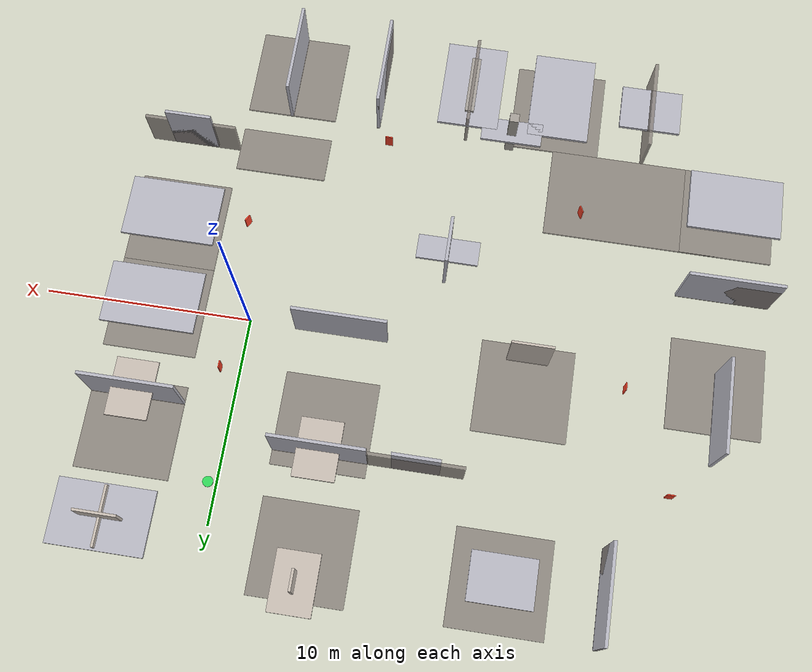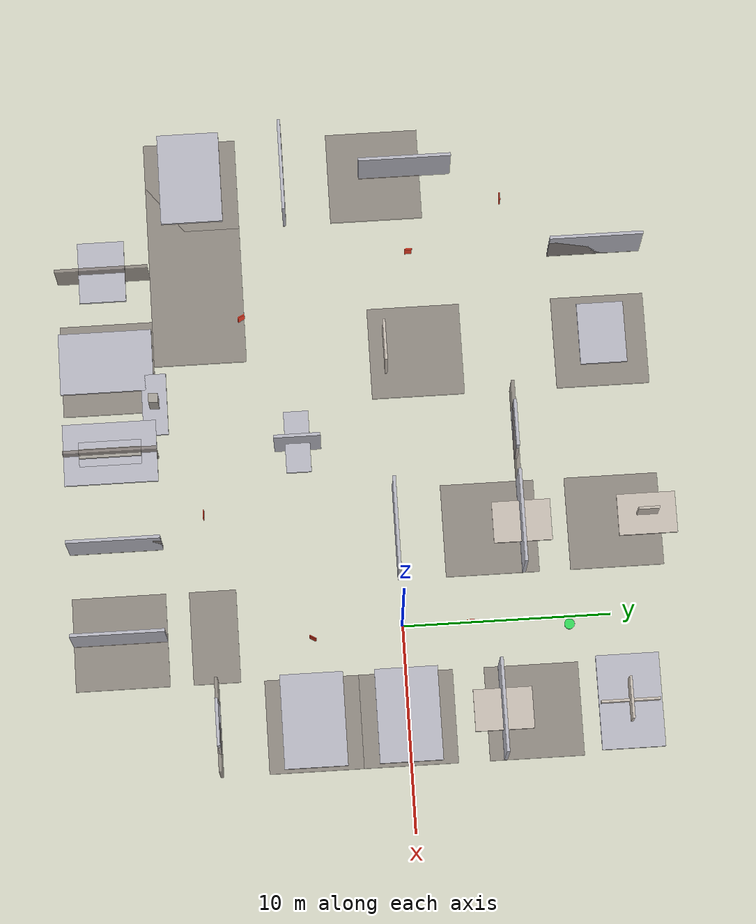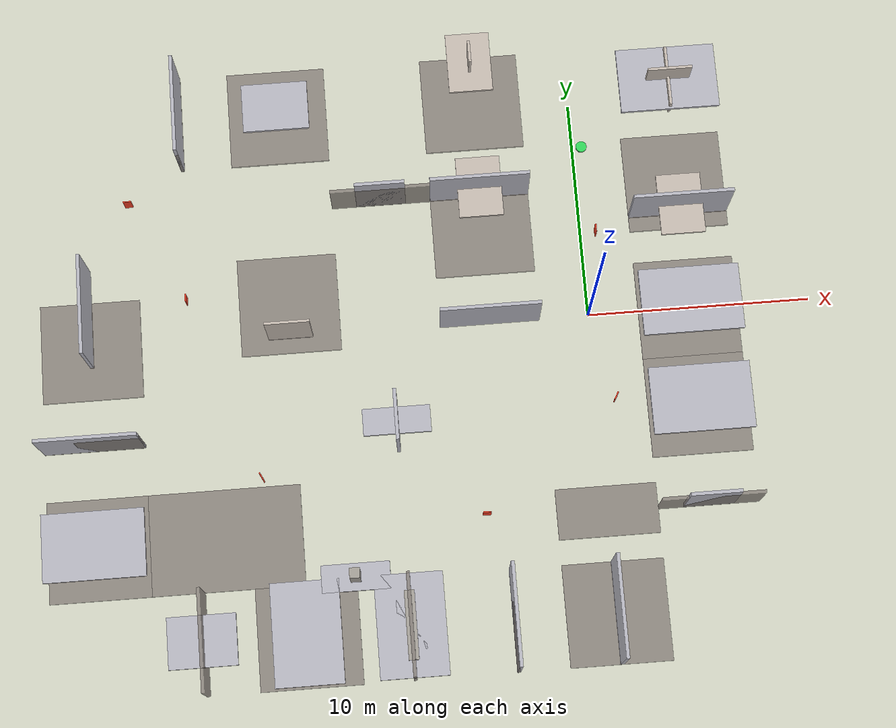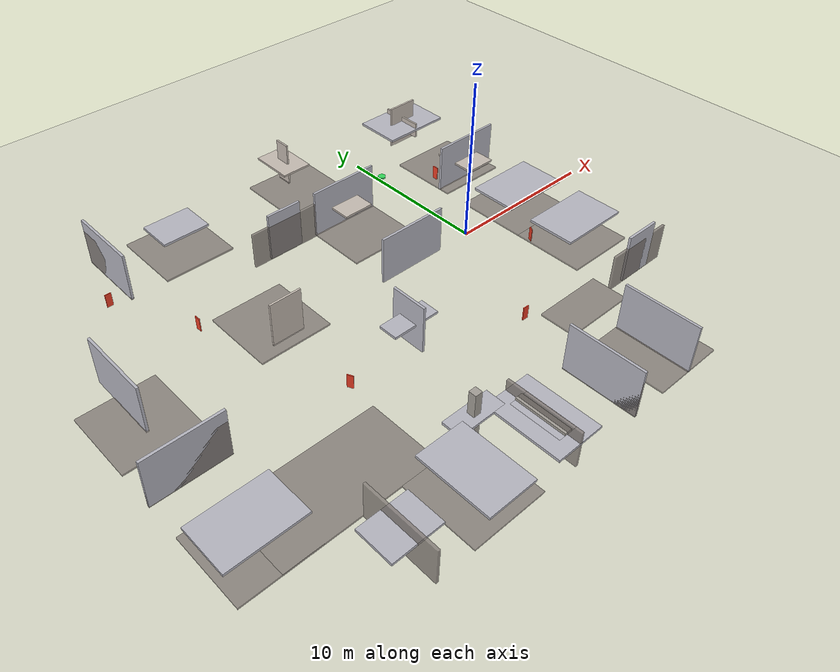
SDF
<sdf version="1.6">
 <world name="lab4_world">
  <include><uri>model://ground_plane</uri></include>
  <include><uri>model://sun</uri></include>
  <model name="lab4_0001_Door_Left_01">
   <static>true</static>
   <pose>4.5 10.5 1.4000018863149999 1.570796380007374 0.0 -0.0</pose>
   <link name="link">
    <collision name="collision"><geometry><box><size>0.12 1.0 2.8</size></box></geometry></collision>
    <visual name="visual">
     <geometry><box><size>0.12 1.0 2.8</size></box></geometry>
     <material><ambient>0.78 0.74 0.7 1.0</ambient><diffuse>0.78 0.74 0.7 1.0</diffuse></material>
    </visual>
   </link>
  </model>
  <model name="lab4_0011_Roof_01">
   <static>true</static>
   <pose>4.5 6.0 0.0 0.0 -0.0 0.0</pose>
   <link name="link">
    <collision name="collision"><geometry><box><size>4.5 4.5 0.15</size></box></geometry></collision>
    <visual name="visual">
     <geometry><box><size>4.5 4.5 0.15</size></box></geometry>
     <material><ambient>0.55 0.52 0.5 0.85</ambient><diffuse>0.55 0.52 0.5 0.85</diffuse></material>
    </visual>
   </link>
  </model>
  <model name="lab4_0012_Column_01_Top">
   <static>true</static>
   <pose>-9.0 -13.5 1.5 1.5707963800074007 0.0 3.141592327748509</pose>
   <link name="link">
    <collision name="collision"><geometry><box><size>0.45 0.45 3.0</size></box></geometry></collision>
    <visual name="visual">
     <geometry><box><size>0.45 0.45 3.0</size></box></geometry>
     <material><ambient>0.65 0.63 0.6 1.0</ambient><diffuse>0.65 0.63 0.6 1.0</diffuse></material>
    </visual>
   </link>
  </model>
  <model name="lab4_0013_Wall_Simple_01">
   <static>true</static>
   <pose>4.5 0.0 1.4999992290394 1.570796380007408 2.3040460015056276e-14 3.14159232774844</pose>
   <link name="link">
    <collision name="collision"><geometry><box><size>4.5 0.15 3.0</size></box></geometry></collision>
    <visual name="visual">
     <geometry><box><size>4.5 0.15 3.0</size></box></geometry>
     <material><ambient>0.72 0.72 0.76 1.0</ambient><diffuse>0.72 0.72 0.76 1.0</diffuse></material>
    </visual>
   </link>
  </model>
  <model name="lab4_0023_Collider_03">
   <static>true</static>
   <pose>-12.792 -2.388 1.5 0.0 0.0 -2.359975077883736</pose>
   <link name="link">
    <collision name="collision"><geometry><box><size>4.5 4.5 3.0</size></box></geometry></collision>
   </link>
  </model>
  <model name="lab4_0024_Collider_01">
   <static>true</static>
   <pose>-9.015 -4.557 1.5 0.0 0.0 1.2679824899917038</pose>
   <link name="link">
    <collision name="collision"><geometry><box><size>4.5 4.5 3.0</size></box></geometry></collision>
   </link>
  </model>
  <model name="lab4_0025_Wall_Arc_90_01">
   <static>true</static>
   <pose>-9.0 -4.5 1.5 0.0 -0.0 -1.5707963800073814</pose>
   <link name="link">
    <collision name="collision"><geometry><box><size>2.25 0.15 3.0</size></box></geometry></collision>
    <visual name="visual">
     <geometry><box><size>2.25 0.15 3.0</size></box></geometry>
     <material><ambient>0.72 0.72 0.76 1.0</ambient><diffuse>0.72 0.72 0.76 1.0</diffuse></material>
    </visual>
   </link>
  </model>
  <model name="lab4_0026_Collider_02">
   <static>true</static>
   <pose>-13.44 0.02999926 1.5 0.0 0.0 -2.8780472667767687</pose>
   <link name="link">
    <collision name="collision"><geometry><box><size>4.5 4.5 3.0</size></box></geometry></collision>
   </link>
  </model>
  <model name="lab4_0027_Collider_01">
   <static>true</static>
   <pose>-18.0 -13.5 1.5 0.0 0.0 1.314078273286227</pose>
   <link name="link">
    <collision name="collision"><geometry><box><size>4.5 4.5 3.0</size></box></geometry></collision>
   </link>
  </model>
  <model name="lab4_0028_Wall_Arc_90_02">
   <static>true</static>
   <pose>-18.0 -13.5 1.5000001788139 1.5707965267948765 0.0 -1.5707967267948564</pose>
   <link name="link">
    <collision name="collision"><geometry><box><size>2.25 0.15 3.0</size></box></geometry></collision>
    <visual name="visual">
     <geometry><box><size>2.25 0.15 3.0</size></box></geometry>
     <material><ambient>0.72 0.72 0.76 1.0</ambient><diffuse>0.72 0.72 0.76 1.0</diffuse></material>
    </visual>
   </link>
  </model>
  <model name="lab4_0030_Collider_03">
   <static>true</static>
   <pose>-21.975 -11.1 1.5 0.0 -0.0 -2.3798531143857002</pose>
   <link name="link">
    <collision name="collision"><geometry><box><size>4.5 4.5 3.0</size></box></geometry></collision>
   </link>
  </model>
  <model name="lab4_0050_Wall_Simple_01">
   <static>true</static>
   <pose>0.0 -13.5 1.5 -0.0 0.0 1.5707963800073814</pose>
   <link name="link">
    <collision name="collision"><geometry><box><size>4.5 0.15 3.0</size></box></geometry></collision>
    <visual name="visual">
     <geometry><box><size>4.5 0.15 3.0</size></box></geometry>
     <material><ambient>0.72 0.72 0.76 1.0</ambient><diffuse>0.72 0.72 0.76 1.0</diffuse></material>
    </visual>
   </link>
  </model>
  <model name="lab4_0052_Door_Arch_01">
   <static>true</static>
   <pose>-4.5 6.0 1.4 1.5707963800074007 0.0 3.141592327748509</pose>
   <link name="link">
    <collision name="collision"><geometry><box><size>2.0 0.12 2.8</size></box></geometry></collision>
    <visual name="visual">
     <geometry><box><size>2.0 0.12 2.8</size></box></geometry>
     <material><ambient>0.78 0.74 0.7 1.0</ambient><diffuse>0.78 0.74 0.7 1.0</diffuse></material>
    </visual>
   </link>
  </model>
  <model name="lab4_0053_Roof_01">
   <static>true</static>
   <pose>4.5 0.0 0.0 0.0 -0.0 0.0</pose>
   <link name="link">
    <collision name="collision"><geometry><box><size>4.5 4.5 0.15</size></box></geometry></collision>
    <visual name="visual">
     <geometry><box><size>4.5 4.5 0.15</size></box></geometry>
     <material><ambient>0.55 0.52 0.5 0.85</ambient><diffuse>0.55 0.52 0.5 0.85</diffuse></material>
    </visual>
   </link>
  </model>
  <model name="lab4_0054_Wall_Simple_01">
   <static>true</static>
   <pose>4.5 10.5 1.4999992290394 1.570796380007408 2.3040460015056276e-14 3.14159232774844</pose>
   <link name="link">
    <collision name="collision"><geometry><box><size>4.5 0.15 3.0</size></box></geometry></collision>
    <visual name="visual">
     <geometry><box><size>4.5 0.15 3.0</size></box></geometry>
     <material><ambient>0.72 0.72 0.76 1.0</ambient><diffuse>0.72 0.72 0.76 1.0</diffuse></material>
    </visual>
   </link>
  </model>
  <model name="lab4_0055_Door_Arch_01">
   <static>true</static>
   <pose>4.5 4.5 1.4 1.570796380007374 0.0 -0.0</pose>
   <link name="link">
    <collision name="collision"><geometry><box><size>2.0 0.12 2.8</size></box></geometry></collision>
    <visual name="visual">
     <geometry><box><size>2.0 0.12 2.8</size></box></geometry>
     <material><ambient>0.78 0.74 0.7 1.0</ambient><diffuse>0.78 0.74 0.7 1.0</diffuse></material>
    </visual>
   </link>
  </model>
  <model name="lab4_0056_Wall_Simple_01">
   <static>true</static>
   <pose>-4.5 0.0 1.5 0.0 -0.0 0.0</pose>
   <link name="link">
    <collision name="collision"><geometry><box><size>4.5 0.15 3.0</size></box></geometry></collision>
    <visual name="visual">
     <geometry><box><size>4.5 0.15 3.0</size></box></geometry>
     <material><ambient>0.72 0.72 0.76 1.0</ambient><diffuse>0.72 0.72 0.76 1.0</diffuse></material>
    </visual>
   </link>
  </model>
  <model name="lab4_0057_Roof_01">
   <static>true</static>
   <pose>-4.5 4.5 0.0 0.0 0.0 3.141592327748393</pose>
   <link name="link">
    <collision name="collision"><geometry><box><size>4.5 4.5 0.15</size></box></geometry></collision>
    <visual name="visual">
     <geometry><box><size>4.5 4.5 0.15</size></box></geometry>
     <material><ambient>0.55 0.52 0.5 0.85</ambient><diffuse>0.55 0.52 0.5 0.85</diffuse></material>
    </visual>
   </link>
  </model>
  <model name="lab4_0059_Roof_Angle_01">
   <static>true</static>
   <pose>-22.5 -9.0 0.0 0.0 0.0 3.141592327748393</pose>
   <link name="link">
    <collision name="collision"><geometry><box><size>4.5 4.5 0.15</size></box></geometry></collision>
    <visual name="visual">
     <geometry><box><size>4.5 4.5 0.15</size></box></geometry>
     <material><ambient>0.55 0.52 0.5 0.85</ambient><diffuse>0.55 0.52 0.5 0.85</diffuse></material>
    </visual>
   </link>
  </model>
  <model name="lab4_0060_Roof_Angle_Smal_01">
   <static>true</static>
   <pose>0.0 -9.0 0.0 -0.0 0.0 1.5707963800073814</pose>
   <link name="link">
    <collision name="collision"><geometry><box><size>2.25 4.5 0.15</size></box></geometry></collision>
    <visual name="visual">
     <geometry><box><size>2.25 4.5 0.15</size></box></geometry>
     <material><ambient>0.55 0.52 0.5 0.85</ambient><diffuse>0.55 0.52 0.5 0.85</diffuse></material>
    </visual>
   </link>
  </model>
  <model name="lab4_0061_Wall_Simple_01">
   <static>true</static>
   <pose>-4.5 -13.5 1.5 -0.0 0.0 1.5707963800073814</pose>
   <link name="link">
    <collision name="collision"><geometry><box><size>4.5 0.15 3.0</size></box></geometry></collision>
    <visual name="visual">
     <geometry><box><size>4.5 0.15 3.0</size></box></geometry>
     <material><ambient>0.72 0.72 0.76 1.0</ambient><diffuse>0.72 0.72 0.76 1.0</diffuse></material>
    </visual>
   </link>
  </model>
  <model name="lab4_0062_Door_Left_01">
   <static>true</static>
   <pose>-4.5 12.0 1.4 0.0 0.0 3.141592327748393</pose>
   <link name="link">
    <collision name="collision"><geometry><box><size>0.12 1.0 2.8</size></box></geometry></collision>
    <visual name="visual">
     <geometry><box><size>0.12 1.0 2.8</size></box></geometry>
     <material><ambient>0.78 0.74 0.7 1.0</ambient><diffuse>0.78 0.74 0.7 1.0</diffuse></material>
    </visual>
   </link>
  </model>
  <model name="lab4_0063_Wall_HalfArc_90_02">
   <static>true</static>
   <pose>-11.25 -11.25 1.4999997245652 1.5707963267949365 0.0 -1.5707967267949363</pose>
   <link name="link">
    <collision name="collision"><geometry><box><size>1.2 0.15 3.0</size></box></geometry></collision>
    <visual name="visual">
     <geometry><box><size>1.2 0.15 3.0</size></box></geometry>
     <material><ambient>0.72 0.72 0.76 1.0</ambient><diffuse>0.72 0.72 0.76 1.0</diffuse></material>
    </visual>
   </link>
  </model>
  <model name="lab4_0064_Collider_01">
   <static>true</static>
   <pose>-11.193 -11.265 1.5 0.0 0.0 1.8561225869267992</pose>
   <link name="link">
    <collision name="collision"><geometry><box><size>4.5 4.5 3.0</size></box></geometry></collision>
   </link>
  </model>
  <model name="lab4_0065_Collider_02">
   <static>true</static>
   <pose>-13.2855 -12.456 1.5 0.0 -0.0 -0.8272861256337589</pose>
   <link name="link">
    <collision name="collision"><geometry><box><size>4.5 4.5 3.0</size></box></geometry></collision>
   </link>
  </model>
  <model name="lab4_0066_Collider_03">
   <static>true</static>
   <pose>-13.539 -13.4805 1.5 0.0 -0.0 -0.2560395896883971</pose>
   <link name="link">
    <collision name="collision"><geometry><box><size>4.5 4.5 3.0</size></box></geometry></collision>
   </link>
  </model>
  <model name="lab4_0067_Roof_01">
   <static>true</static>
   <pose>-9.0 -13.5 0.0 1.5707965267948765 0.0 -1.5707967267948564</pose>
   <link name="link">
    <collision name="collision"><geometry><box><size>4.5 4.5 0.15</size></box></geometry></collision>
    <visual name="visual">
     <geometry><box><size>4.5 4.5 0.15</size></box></geometry>
     <material><ambient>0.55 0.52 0.5 0.85</ambient><diffuse>0.55 0.52 0.5 0.85</diffuse></material>
    </visual>
   </link>
  </model>
  <model name="lab4_0069_Roof_Angle_01">
   <static>true</static>
   <pose>-9.0 6.0 1.788139e-07 1.570796380007374 0.0 -0.0</pose>
   <link name="link">
    <collision name="collision"><geometry><box><size>4.5 4.5 0.15</size></box></geometry></collision>
    <visual name="visual">
     <geometry><box><size>4.5 4.5 0.15</size></box></geometry>
     <material><ambient>0.55 0.52 0.5 0.85</ambient><diffuse>0.55 0.52 0.5 0.85</diffuse></material>
    </visual>
   </link>
  </model>
  <model name="lab4_0070_Collider_01">
   <static>true</static>
   <pose>4.5 -9.0 1.5 0.0 0.0 2.884874576881996</pose>
   <link name="link">
    <collision name="collision"><geometry><box><size>4.5 4.5 3.0</size></box></geometry></collision>
   </link>
  </model>
  <model name="lab4_0071_Collider_02">
   <static>true</static>
   <pose>-0.06000137 -13.515 1.5 0.0 -0.0 -1.3432360122908897</pose>
   <link name="link">
    <collision name="collision"><geometry><box><size>4.5 4.5 3.0</size></box></geometry></collision>
   </link>
  </model>
  <model name="lab4_0072_Wall_Arc_90_02">
   <static>true</static>
   <pose>4.5 -9.0 1.5 0.0 -0.0 0.0</pose>
   <link name="link">
    <collision name="collision"><geometry><box><size>2.25 0.15 3.0</size></box></geometry></collision>
    <visual name="visual">
     <geometry><box><size>2.25 0.15 3.0</size></box></geometry>
     <material><ambient>0.72 0.72 0.76 1.0</ambient><diffuse>0.72 0.72 0.76 1.0</diffuse></material>
    </visual>
   </link>
  </model>
  <model name="lab4_0073_Collider_03">
   <static>true</static>
   <pose>2.099999 -12.975 1.5 0.0 -0.0 -0.8090566831456931</pose>
   <link name="link">
    <collision name="collision"><geometry><box><size>4.5 4.5 3.0</size></box></geometry></collision>
   </link>
  </model>
  <model name="lab4_0074_Wall_Simple_01">
   <static>true</static>
   <pose>-22.5 1.5 1.5 -0.0 0.0 1.5707963800073814</pose>
   <link name="link">
    <collision name="collision"><geometry><box><size>4.5 0.15 3.0</size></box></geometry></collision>
    <visual name="visual">
     <geometry><box><size>4.5 0.15 3.0</size></box></geometry>
     <material><ambient>0.72 0.72 0.76 1.0</ambient><diffuse>0.72 0.72 0.76 1.0</diffuse></material>
    </visual>
   </link>
  </model>
  <model name="lab4_0075_Roof_01">
   <static>true</static>
   <pose>-18.0 10.5 0.0 1.5707965267948765 0.0 1.5707967267948564</pose>
   <link name="link">
    <collision name="collision"><geometry><box><size>4.5 4.5 0.15</size></box></geometry></collision>
    <visual name="visual">
     <geometry><box><size>4.5 4.5 0.15</size></box></geometry>
     <material><ambient>0.55 0.52 0.5 0.85</ambient><diffuse>0.55 0.52 0.5 0.85</diffuse></material>
    </visual>
   </link>
  </model>
  <model name="lab4_0076_Wall_Simple_01">
   <static>true</static>
   <pose>4.5 4.5 1.5 0.0 0.0 3.141592327748393</pose>
   <link name="link">
    <collision name="collision"><geometry><box><size>4.5 0.15 3.0</size></box></geometry></collision>
    <visual name="visual">
     <geometry><box><size>4.5 0.15 3.0</size></box></geometry>
     <material><ambient>0.72 0.72 0.76 1.0</ambient><diffuse>0.72 0.72 0.76 1.0</diffuse></material>
    </visual>
   </link>
  </model>
  <model name="lab4_0077_Wall_Simple_01">
   <static>true</static>
   <pose>-22.5 -9.0 1.4999992290394 1.5707963800073814 0.0 -0.0</pose>
   <link name="link">
    <collision name="collision"><geometry><box><size>4.5 0.15 3.0</size></box></geometry></collision>
    <visual name="visual">
     <geometry><box><size>4.5 0.15 3.0</size></box></geometry>
     <material><ambient>0.72 0.72 0.76 1.0</ambient><diffuse>0.72 0.72 0.76 1.0</diffuse></material>
    </visual>
   </link>
  </model>
  <model name="lab4_0078_Door_Arch_01">
   <static>true</static>
   <pose>4.5 10.5 1.4 0.0 -0.0 0.0</pose>
   <link name="link">
    <collision name="collision"><geometry><box><size>2.0 0.12 2.8</size></box></geometry></collision>
    <visual name="visual">
     <geometry><box><size>2.0 0.12 2.8</size></box></geometry>
     <material><ambient>0.78 0.74 0.7 1.0</ambient><diffuse>0.78 0.74 0.7 1.0</diffuse></material>
    </visual>
   </link>
  </model>
  <model name="lab4_0079_Door_Arch_01">
   <static>true</static>
   <pose>-13.5 0.0 1.4 0.0 -0.0 0.0</pose>
   <link name="link">
    <collision name="collision"><geometry><box><size>2.0 0.12 2.8</size></box></geometry></collision>
    <visual name="visual">
     <geometry><box><size>2.0 0.12 2.8</size></box></geometry>
     <material><ambient>0.78 0.74 0.7 1.0</ambient><diffuse>0.78 0.74 0.7 1.0</diffuse></material>
    </visual>
   </link>
  </model>
  <model name="lab4_0080_Wall_Simple_01">
   <static>true</static>
   <pose>-4.5 6.0 1.5 0.0 -0.0 0.0</pose>
   <link name="link">
    <collision name="collision"><geometry><box><size>4.5 0.15 3.0</size></box></geometry></collision>
    <visual name="visual">
     <geometry><box><size>4.5 0.15 3.0</size></box></geometry>
     <material><ambient>0.72 0.72 0.76 1.0</ambient><diffuse>0.72 0.72 0.76 1.0</diffuse></material>
    </visual>
   </link>
  </model>
  <model name="lab4_0081_Roof_Angle_Large_01">
   <static>true</static>
   <pose>-18.0 -9.0 0.0 0.0 -0.0 0.0</pose>
   <link name="link">
    <collision name="collision"><geometry><box><size>9.0 4.5 0.15</size></box></geometry></collision>
    <visual name="visual">
     <geometry><box><size>9.0 4.5 0.15</size></box></geometry>
     <material><ambient>0.55 0.52 0.5 0.85</ambient><diffuse>0.55 0.52 0.5 0.85</diffuse></material>
    </visual>
   </link>
  </model>
  <model name="lab4_0100_Roof_01">
   <static>true</static>
   <pose>4.5 -4.5 0.0 0.0 -0.0 0.0</pose>
   <link name="link">
    <collision name="collision"><geometry><box><size>4.5 4.5 0.15</size></box></geometry></collision>
    <visual name="visual">
     <geometry><box><size>4.5 4.5 0.15</size></box></geometry>
     <material><ambient>0.55 0.52 0.5 0.85</ambient><diffuse>0.55 0.52 0.5 0.85</diffuse></material>
    </visual>
   </link>
  </model>
  <model name="lab4_0101_Wall_Simple_01">
   <static>true</static>
   <pose>-18.0 10.5 1.5 0.0 -0.0 -1.5707963800073814</pose>
   <link name="link">
    <collision name="collision"><geometry><box><size>4.5 0.15 3.0</size></box></geometry></collision>
    <visual name="visual">
     <geometry><box><size>4.5 0.15 3.0</size></box></geometry>
     <material><ambient>0.72 0.72 0.76 1.0</ambient><diffuse>0.72 0.72 0.76 1.0</diffuse></material>
    </visual>
   </link>
  </model>
  <model name="lab4_0102_Roof_01">
   <static>true</static>
   <pose>-13.5 10.5 0.0 -0.0 0.0 1.5707963800073814</pose>
   <link name="link">
    <collision name="collision"><geometry><box><size>4.5 4.5 0.15</size></box></geometry></collision>
    <visual name="visual">
     <geometry><box><size>4.5 4.5 0.15</size></box></geometry>
     <material><ambient>0.55 0.52 0.5 0.85</ambient><diffuse>0.55 0.52 0.5 0.85</diffuse></material>
    </visual>
   </link>
  </model>
  <model name="lab4_0103_Roof_Angle_01">
   <static>true</static>
   <pose>0.0 -13.5 0.0 0.0 -0.0 -1.5707963800073814</pose>
   <link name="link">
    <collision name="collision"><geometry><box><size>4.5 4.5 0.15</size></box></geometry></collision>
    <visual name="visual">
     <geometry><box><size>4.5 4.5 0.15</size></box></geometry>
     <material><ambient>0.55 0.52 0.5 0.85</ambient><diffuse>0.55 0.52 0.5 0.85</diffuse></material>
    </visual>
   </link>
  </model>
  <model name="lab4_0104_Roof_Angle_01">
   <static>true</static>
   <pose>-13.5 1.5 0.0 0.0 -0.0 -1.5707963800073814</pose>
   <link name="link">
    <collision name="collision"><geometry><box><size>4.5 4.5 0.15</size></box></geometry></collision>
    <visual name="visual">
     <geometry><box><size>4.5 4.5 0.15</size></box></geometry>
     <material><ambient>0.55 0.52 0.5 0.85</ambient><diffuse>0.55 0.52 0.5 0.85</diffuse></material>
    </visual>
   </link>
  </model>
  <model name="lab4_0105_Wall_Simple_01">
   <static>true</static>
   <pose>-13.5 -13.5 1.4999992290394 1.5707965267949164 -2.0039525594484076e-14 1.5707965267949164</pose>
   <link name="link">
    <collision name="collision"><geometry><box><size>4.5 0.15 3.0</size></box></geometry></collision>
    <visual name="visual">
     <geometry><box><size>4.5 0.15 3.0</size></box></geometry>
     <material><ambient>0.72 0.72 0.76 1.0</ambient><diffuse>0.72 0.72 0.76 1.0</diffuse></material>
    </visual>
   </link>
  </model>
  <model name="lab4_0106_Roof_01">
   <static>true</static>
   <pose>-13.5 -13.5 0.0 0.0 -0.0 -1.5707963800073814</pose>
   <link name="link">
    <collision name="collision"><geometry><box><size>4.5 4.5 0.15</size></box></geometry></collision>
    <visual name="visual">
     <geometry><box><size>4.5 4.5 0.15</size></box></geometry>
     <material><ambient>0.55 0.52 0.5 0.85</ambient><diffuse>0.55 0.52 0.5 0.85</diffuse></material>
    </visual>
   </link>
  </model>
  <model name="lab4_0107_Collider_01">
   <static>true</static>
   <pose>-13.5 10.5 1.5 0.0 -0.0 -1.8275142851372297</pose>
   <link name="link">
    <collision name="collision"><geometry><box><size>4.5 4.5 3.0</size></box></geometry></collision>
   </link>
  </model>
  <model name="lab4_0108_Wall_Arc_90_02">
   <static>true</static>
   <pose>-13.5 10.5 1.5000001788139 1.5707965267948765 0.0 1.5707967267948564</pose>
   <link name="link">
    <collision name="collision"><geometry><box><size>2.25 0.15 3.0</size></box></geometry></collision>
    <visual name="visual">
     <geometry><box><size>2.25 0.15 3.0</size></box></geometry>
     <material><ambient>0.72 0.72 0.76 1.0</ambient><diffuse>0.72 0.72 0.76 1.0</diffuse></material>
    </visual>
   </link>
  </model>
  <model name="lab4_0109_Collider_02">
   <static>true</static>
   <pose>-8.985001 5.94 1.5 -0.0 0.0 0.22756068167695795</pose>
   <link name="link">
    <collision name="collision"><geometry><box><size>4.5 4.5 3.0</size></box></geometry></collision>
   </link>
  </model>
  <model name="lab4_0110_Collider_03">
   <static>true</static>
   <pose>-9.525001 8.099999 1.5 -0.0 0.0 0.7617398497767799</pose>
   <link name="link">
    <collision name="collision"><geometry><box><size>4.5 4.5 3.0</size></box></geometry></collision>
   </link>
  </model>
  <model name="lab4_0111_Roof_01">
   <static>true</static>
   <pose>-18.0 -13.5 0.0 1.5707965267948765 0.0 -1.5707967267948564</pose>
   <link name="link">
    <collision name="collision"><geometry><box><size>4.5 4.5 0.15</size></box></geometry></collision>
    <visual name="visual">
     <geometry><box><size>4.5 4.5 0.15</size></box></geometry>
     <material><ambient>0.55 0.52 0.5 0.85</ambient><diffuse>0.55 0.52 0.5 0.85</diffuse></material>
    </visual>
   </link>
  </model>
  <model name="lab4_0112_Roof_01">
   <static>true</static>
   <pose>-4.5 -13.5 0.0 1.5707965267948765 0.0 -1.5707967267948564</pose>
   <link name="link">
    <collision name="collision"><geometry><box><size>4.5 4.5 0.15</size></box></geometry></collision>
    <visual name="visual">
     <geometry><box><size>4.5 4.5 0.15</size></box></geometry>
     <material><ambient>0.55 0.52 0.5 0.85</ambient><diffuse>0.55 0.52 0.5 0.85</diffuse></material>
    </visual>
   </link>
  </model>
  <model name="lab4_0113_Collider_01">
   <static>true</static>
   <pose>-9.0 6.0 1.5 0.0 0.0 2.884874576881996</pose>
   <link name="link">
    <collision name="collision"><geometry><box><size>4.5 4.5 3.0</size></box></geometry></collision>
   </link>
  </model>
  <model name="lab4_0114_Collider_02">
   <static>true</static>
   <pose>-13.56 1.485001 1.5 0.0 -0.0 -1.3432360122908897</pose>
   <link name="link">
    <collision name="collision"><geometry><box><size>4.5 4.5 3.0</size></box></geometry></collision>
   </link>
  </model>
  <model name="lab4_0115_Collider_03">
   <static>true</static>
   <pose>-11.4 2.025001 1.5 0.0 -0.0 -0.8090566831456931</pose>
   <link name="link">
    <collision name="collision"><geometry><box><size>4.5 4.5 3.0</size></box></geometry></collision>
   </link>
  </model>
  <model name="lab4_0116_Wall_Arc_90_02">
   <static>true</static>
   <pose>-9.0 6.0 1.5 0.0 -0.0 0.0</pose>
   <link name="link">
    <collision name="collision"><geometry><box><size>2.25 0.15 3.0</size></box></geometry></collision>
    <visual name="visual">
     <geometry><box><size>2.25 0.15 3.0</size></box></geometry>
     <material><ambient>0.72 0.72 0.76 1.0</ambient><diffuse>0.72 0.72 0.76 1.0</diffuse></material>
    </visual>
   </link>
  </model>
  <model name="lab4_0117_Roof_01">
   <static>true</static>
   <pose>-22.5 -4.5 0.0 1.5707963800074007 0.0 3.141592327748509</pose>
   <link name="link">
    <collision name="collision"><geometry><box><size>4.5 4.5 0.15</size></box></geometry></collision>
    <visual name="visual">
     <geometry><box><size>4.5 4.5 0.15</size></box></geometry>
     <material><ambient>0.55 0.52 0.5 0.85</ambient><diffuse>0.55 0.52 0.5 0.85</diffuse></material>
    </visual>
   </link>
  </model>
  <model name="lab4_0118_Wall_HalfArc_90_02">
   <static>true</static>
   <pose>-9.0 -13.5 1.4999997245652 1.5707963800074367 0.0 3.141592152902795</pose>
   <link name="link">
    <collision name="collision"><geometry><box><size>1.2 0.15 3.0</size></box></geometry></collision>
    <visual name="visual">
     <geometry><box><size>1.2 0.15 3.0</size></box></geometry>
     <material><ambient>0.72 0.72 0.76 1.0</ambient><diffuse>0.72 0.72 0.76 1.0</diffuse></material>
    </visual>
   </link>
  </model>
  <model name="lab4_0119_Collider_01">
   <static>true</static>
   <pose>-9.015 -13.557 1.5 0.0 0.0 0.2853262892174554</pose>
   <link name="link">
    <collision name="collision"><geometry><box><size>4.5 4.5 3.0</size></box></geometry></collision>
   </link>
  </model>
  <model name="lab4_0120_Collider_02">
   <static>true</static>
   <pose>-10.206 -11.4645 1.5 0.0 -0.0 -2.3980825779819357</pose>
   <link name="link">
    <collision name="collision"><geometry><box><size>4.5 4.5 3.0</size></box></geometry></collision>
   </link>
  </model>
  <model name="lab4_0121_Collider_03">
   <static>true</static>
   <pose>-11.2305 -11.211 1.5 0.0 -0.0 -1.826836275014547</pose>
   <link name="link">
    <collision name="collision"><geometry><box><size>4.5 4.5 3.0</size></box></geometry></collision>
   </link>
  </model>
  <model name="lab4_0122_Wall_Simple_01">
   <static>true</static>
   <pose>4.5 -4.5 1.4999992290394 1.570796380007408 2.3040460015056276e-14 3.14159232774844</pose>
   <link name="link">
    <collision name="collision"><geometry><box><size>4.5 0.15 3.0</size></box></geometry></collision>
    <visual name="visual">
     <geometry><box><size>4.5 0.15 3.0</size></box></geometry>
     <material><ambient>0.72 0.72 0.76 1.0</ambient><diffuse>0.72 0.72 0.76 1.0</diffuse></material>
    </visual>
   </link>
  </model>
  <model name="lab4_0123_Roof_01">
   <static>true</static>
   <pose>-22.5 0.0 0.0 0.0 0.0 3.141592327748393</pose>
   <link name="link">
    <collision name="collision"><geometry><box><size>4.5 4.5 0.15</size></box></geometry></collision>
    <visual name="visual">
     <geometry><box><size>4.5 4.5 0.15</size></box></geometry>
     <material><ambient>0.55 0.52 0.5 0.85</ambient><diffuse>0.55 0.52 0.5 0.85</diffuse></material>
    </visual>
   </link>
  </model>
  <model name="lab4_0125_Column_01_Top">
   <static>true</static>
   <pose>-11.25 -11.25 1.5 0.0 -0.0 -1.5707963800073814</pose>
   <link name="link">
    <collision name="collision"><geometry><box><size>0.45 0.45 3.0</size></box></geometry></collision>
    <visual name="visual">
     <geometry><box><size>0.45 0.45 3.0</size></box></geometry>
     <material><ambient>0.65 0.63 0.6 1.0</ambient><diffuse>0.65 0.63 0.6 1.0</diffuse></material>
    </visual>
   </link>
  </model>
  <model name="lab4_0126_Collider_04">
   <static>true</static>
   <pose>-9.004499 -4.476 1.5 0.0 -0.0 -1.5707963800073814</pose>
   <link name="link">
    <collision name="collision"><geometry><box><size>4.5 4.5 3.0</size></box></geometry></collision>
   </link>
  </model>
  <model name="lab4_0127_Collider_03">
   <static>true</static>
   <pose>-6.786 -4.476 1.5 0.0 0.0 -1.3351762349218408</pose>
   <link name="link">
    <collision name="collision"><geometry><box><size>4.5 4.5 3.0</size></box></geometry></collision>
   </link>
  </model>
  <model name="lab4_0128_Wall_HalfArc_90_03">
   <static>true</static>
   <pose>-9.0 -4.499998 1.500000380236 1.5707963267948966 0.0 1.5707963267948966</pose>
   <link name="link">
    <collision name="collision"><geometry><box><size>1.2 0.15 3.0</size></box></geometry></collision>
    <visual name="visual">
     <geometry><box><size>1.2 0.15 3.0</size></box></geometry>
     <material><ambient>0.72 0.72 0.76 1.0</ambient><diffuse>0.72 0.72 0.76 1.0</diffuse></material>
    </visual>
   </link>
  </model>
  <model name="lab4_0129_Collider_05">
   <static>true</static>
   <pose>-4.477501 0.003000498 1.5 0.0 0.0 -3.141592355566504</pose>
   <link name="link">
    <collision name="collision"><geometry><box><size>4.5 4.5 3.0</size></box></geometry></collision>
   </link>
  </model>
  <model name="lab4_0130_Collider_02">
   <static>true</static>
   <pose>-5.73 -4.2465 1.5 0.0 -0.0 -0.7666982722090955</pose>
   <link name="link">
    <collision name="collision"><geometry><box><size>4.5 4.5 3.0</size></box></geometry></collision>
   </link>
  </model>
  <model name="lab4_0131_Collider_01">
   <static>true</static>
   <pose>-4.771501 -3.2475 1.5 0.0 -0.0 -0.24085555194177657</pose>
   <link name="link">
    <collision name="collision"><geometry><box><size>4.5 4.5 3.0</size></box></geometry></collision>
   </link>
  </model>
  <model name="lab4_0132_Roof_01">
   <static>true</static>
   <pose>4.5 -9.0 0.0 1.570796380007374 0.0 -0.0</pose>
   <link name="link">
    <collision name="collision"><geometry><box><size>4.5 4.5 0.15</size></box></geometry></collision>
    <visual name="visual">
     <geometry><box><size>4.5 4.5 0.15</size></box></geometry>
     <material><ambient>0.55 0.52 0.5 0.85</ambient><diffuse>0.55 0.52 0.5 0.85</diffuse></material>
    </visual>
   </link>
  </model>
  <model name="lab4_0133_Roof_01">
   <static>true</static>
   <pose>-4.5 10.5 0.0 0.0 0.0 3.141592327748393</pose>
   <link name="link">
    <collision name="collision"><geometry><box><size>4.5 4.5 0.15</size></box></geometry></collision>
    <visual name="visual">
     <geometry><box><size>4.5 4.5 0.15</size></box></geometry>
     <material><ambient>0.55 0.52 0.5 0.85</ambient><diffuse>0.55 0.52 0.5 0.85</diffuse></material>
    </visual>
   </link>
  </model>
  <model name="lab4_0134_Wall_Simple_01">
   <static>true</static>
   <pose>-9.0 -13.5 1.4999992290394 1.5707965267949164 -2.0039525594484076e-14 1.5707965267949164</pose>
   <link name="link">
    <collision name="collision"><geometry><box><size>4.5 0.15 3.0</size></box></geometry></collision>
    <visual name="visual">
     <geometry><box><size>4.5 0.15 3.0</size></box></geometry>
     <material><ambient>0.72 0.72 0.76 1.0</ambient><diffuse>0.72 0.72 0.76 1.0</diffuse></material>
    </visual>
   </link>
  </model>
  <model name="lab4_0135_Wall_Simple_01">
   <static>true</static>
   <pose>-22.5 -4.5 1.5 0.0 -0.0 0.0</pose>
   <link name="link">
    <collision name="collision"><geometry><box><size>4.5 0.15 3.0</size></box></geometry></collision>
    <visual name="visual">
     <geometry><box><size>4.5 0.15 3.0</size></box></geometry>
     <material><ambient>0.72 0.72 0.76 1.0</ambient><diffuse>0.72 0.72 0.76 1.0</diffuse></material>
    </visual>
   </link>
  </model>
  <model name="lab4_0136_Door_Arch_01">
   <static>true</static>
   <pose>-4.5 12.0 1.4 1.5707963800074007 0.0 3.141592327748509</pose>
   <link name="link">
    <collision name="collision"><geometry><box><size>2.0 0.12 2.8</size></box></geometry></collision>
    <visual name="visual">
     <geometry><box><size>2.0 0.12 2.8</size></box></geometry>
     <material><ambient>0.78 0.74 0.7 1.0</ambient><diffuse>0.78 0.74 0.7 1.0</diffuse></material>
    </visual>
   </link>
  </model>
  <model name="lab4_gate_00">
   <static>true</static>
   <pose>0.4226201 3.165232 2.67 0.0 -0.0 -1.570796380007374</pose>
   <link name="link">
    <visual name="visual">
     <geometry><box><size>0.35 0.05 0.8</size></box></geometry>
     <material><ambient>0.95 0.25 0.15 0.9</ambient><diffuse>0.95 0.25 0.15 0.9</diffuse></material>
    </visual>
   </link>
  </model>
  <model name="lab4_gate_01">
   <static>true</static>
   <pose>0.67 -4.31 2.04 0.0 -0.0 -2.101258307094236</pose>
   <link name="link">
    <visual name="visual">
     <geometry><box><size>0.35 0.05 0.8</size></box></geometry>
     <material><ambient>0.95 0.25 0.15 0.9</ambient><diffuse>0.95 0.25 0.15 0.9</diffuse></material>
    </visual>
   </link>
  </model>
  <model name="lab4_gate_02">
   <static>true</static>
   <pose>-5.41 -9.13 2.88 0.0 0.0 3.106686731903601</pose>
   <link name="link">
    <visual name="visual">
     <geometry><box><size>0.35 0.05 0.8</size></box></geometry>
     <material><ambient>0.95 0.25 0.15 0.9</ambient><diffuse>0.95 0.25 0.15 0.9</diffuse></material>
    </visual>
   </link>
  </model>
  <model name="lab4_gate_03">
   <static>true</static>
   <pose>-14.94 -6.83 2.84 0.0 0.0 2.0454563987353978</pose>
   <link name="link">
    <visual name="visual">
     <geometry><box><size>0.35 0.05 0.8</size></box></geometry>
     <material><ambient>0.95 0.25 0.15 0.9</ambient><diffuse>0.95 0.25 0.15 0.9</diffuse></material>
    </visual>
   </link>
  </model>
  <model name="lab4_gate_04">
   <static>true</static>
   <pose>-17.83 1.38 2.67 0.0 0.0 1.570796380007374</pose>
   <link name="link">
    <visual name="visual">
     <geometry><box><size>0.35 0.05 0.8</size></box></geometry>
     <material><ambient>0.95 0.25 0.15 0.9</ambient><diffuse>0.95 0.25 0.15 0.9</diffuse></material>
    </visual>
   </link>
  </model>
  <model name="lab4_gate_05">
   <static>true</static>
   <pose>-20.2 5.960001 2.67 0.0 -0.0 3.141592653589793</pose>
   <link name="link">
    <visual name="visual">
     <geometry><box><size>0.35 0.05 0.8</size></box></geometry>
     <material><ambient>0.95 0.25 0.15 0.9</ambient><diffuse>0.95 0.25 0.15 0.9</diffuse></material>
    </visual>
   </link>
  </model>
  <model name="spawn_marker">
   <static>true</static>
   <pose>0.4 8.0 0.05 0 0 0</pose>
   <link name="link">
    <visual name="visual">
     <geometry><cylinder><radius>0.25</radius><length>0.1</length></cylinder></geometry>
     <material><ambient>0.2 0.85 0.35 1</ambient><diffuse>0.2 0.85 0.35 1</diffuse></material>
    </visual>
   </link>
  </model>
 </world>
</sdf>
